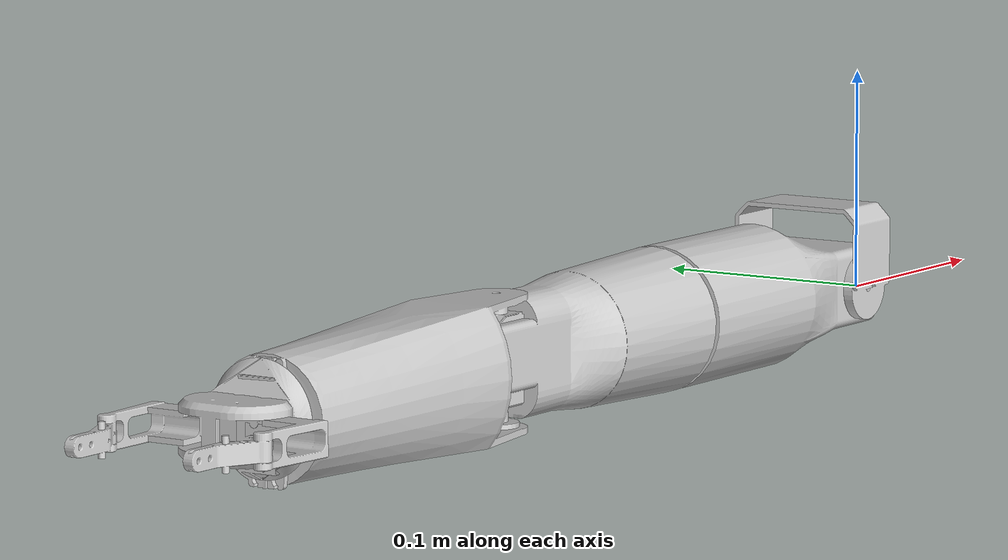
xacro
<?xml version="1.0"?>
  <robot xmlns:xacro="http://ros.org/wiki/xacro" name="anya_left">
  <xacro:include filename="$(find anya_final)/urdf/anya_gripper.urdf.xacro"/>

  <xacro:property name="scale" value="0.001" />
  <xacro:property name="laj_1_l" value="-3.14159" />
  <xacro:property name="laj_1_u" value="3.14159"  />

  <xacro:property name="laj_2_l" value="-3.14159" />
  <xacro:property name="laj_2_u" value="3.14159"  />

  <xacro:property name="laj_3_l" value="-3.14159" />
  <xacro:property name="laj_3_u" value="3.14159"  />

  <xacro:property name="laj_4_l" value="-3.14159" />
  <xacro:property name="laj_4_u" value="3.14159"  />

     <link name="lal_1">
       <visual>
          <geometry>
            <mesh filename="package://anya_final/meshes/c5.dae" scale="${scale} ${scale} ${scale}"/>
          </geometry>
          <origin xyz="0.0 0.0 0.0" rpy="0 0 0"/>
       </visual>
       <collision>
         <geometry>
            <mesh filename="package://anya_final/meshes/c5.stl" scale="${scale} ${scale} ${scale}"/>
         </geometry>
       </collision>
       <inertial>
         <mass value="0.016"/>
         <inertia ixx="100.0" ixy="0.0" ixz="0.0" iyy="100.0" iyz="0.0" izz="100.0"/>
       </inertial>
     </link>
     <link name="lal_2">
       <visual>
        <geometry>
          <mesh filename="package://anya_final/meshes/c4.dae" scale="${scale} ${scale} ${scale}"/>
        </geometry>
        <origin xyz="0.0 -0.005 0.0" rpy="0.0 0.0 0.0"/>
       </visual>
       <collision>
         <geometry>
            <mesh filename="package://anya_final/meshes/c4.stl" scale="${scale} ${scale} ${scale}"/>
         </geometry>
       </collision>
       <inertial>
         <mass value="0.237"/>
         <inertia ixx="100.0" ixy="0.0" ixz="0.0" iyy="100.0" iyz="0.0" izz="100.0"/>
       </inertial>
     </link>
     <link name="lal_3">
       <visual>
        <geometry>
          <mesh filename="package://anya_final/meshes/c3.dae" scale="${scale} ${scale} ${scale}"/>
        </geometry>
        <origin xyz="-0 0 0.0" rpy="0 0 0.0"/>
       </visual>
       <collision>
         <geometry>
            <mesh filename="package://anya_final/meshes/c3.stl" scale="${scale} ${scale} ${scale}"/>
         </geometry>
       </collision>
       <inertial>
         <mass value="0.131"/>
         <inertia ixx="100.0" ixy="0.0" ixz="0.0" iyy="100.0" iyz="0.0" izz="100.0"/>
       </inertial>
     </link>
     <link name="lal_4">
       <visual>
        <geometry>
          <mesh filename="package://anya_final/meshes/c2.dae" scale="${scale} ${scale} ${scale}"/>
        </geometry>
        <origin xyz="0 0 0.0" rpy="0 0 0.0"/>
       </visual>
       <collision>
         <geometry>
            <mesh filename="package://anya_final/meshes/c2.stl" scale="${scale} ${scale} ${scale}"/>
         </geometry>
       </collision>
       <inertial>
         <mass value="0.146"/>
         <inertia ixx="100.0" ixy="0.0" ixz="0.0" iyy="100.0" iyz="0.0" izz="100.0"/>
       </inertial>
     </link>

     <joint name="laj_1" type="revolute">
       <parent link="lal_1"/>
       <child link="lal_2"/>
       <axis xyz="0 1 0"/>
       <limit lower="${laj_1_l}" upper="${laj_1_u}" velocity="1.0" effort="60.0"/>

       <origin xyz="0 -0.0 0" rpy="0 0 0"/>
     </joint>

     <joint name="laj_2" type="revolute">
       <parent link="lal_2"/>
       <child link="lal_3"/>
       <axis xyz="1 0 0"/>
       <limit lower="${laj_2_l}" upper="${laj_2_u}" velocity="1.0" effort="60.0"/>

       <origin xyz="-0.130 0.025 0.0" rpy="0 0 0"/>
     </joint>

     <joint name="laj_3" type="revolute">
       <parent link="lal_3"/>
       <child link="lal_4"/>
       <axis xyz="0 0 1"/>
       <limit lower="${laj_3_l}" upper="${laj_3_u}" velocity="1.0" effort="60.0"/>

       <origin xyz="-0.13950 -0.004 -0.02250" rpy="0 0 0"/>
      </joint>

     <joint name="gripper_joint" type="revolute">
       <parent link="lal_4"/>
       <child link="gripper_link"/>
       <axis xyz="0 1 0"/>
       <limit lower="${laj_4_l}" upper="${laj_4_u}" velocity="1.0" effort="60.0"/>

       <origin xyz="-0.17 0.0 0.02" rpy="0 0 -1.59"/>
     </joint>

  </robot>

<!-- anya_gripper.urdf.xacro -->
<robot xmlns:xacro="http://ros.org/wiki/xacro" name="anya_gripper">
    <link name="gripper_link">
        <visual>
            <geometry>
                <mesh filename="package://anya_final/meshes/gripper_3.dae" scale="0.001 0.001 0.001"/>
            </geometry>
            <origin xyz="0.0 0.0 0.0" rpy="0 0 0"/>
        </visual>
        <collision>
         <geometry>
            <mesh filename="package://anya_final/meshes/gripper_3.dae" scale="0.001 0.001 0.001"/>
         </geometry>
         <origin xyz="0.0 0.0 -0.0" rpy="0 0 0"/>
       </collision>
       <inertial>
         <mass value="0.131"/>
         <inertia ixx="100.0" ixy="0.0" ixz="0.0" iyy="100.0" iyz="0.0" izz="100.0"/>
       </inertial>
    </link>

    <link name="finger_1">
        <visual>
            <geometry>
                <mesh filename="package://anya_final/meshes/finger_1.dae" scale="0.001 0.001 0.001"/>
            </geometry>
            <origin xyz="-0.02 -0.017214 0.007" rpy="0 0 0"/>
        </visual>
        <collision>
         <geometry>
            <mesh filename="package://anya_final/meshes/finger_1.dae" scale="0.001 0.001 0.001"/>
         </geometry>
         <origin xyz="0.0 0.0 0.0" rpy="0 0 0"/>
       </collision>
       <inertial>
         <mass value="0.131"/>
         <inertia ixx="100.0" ixy="0.0" ixz="0.0" iyy="100.0" iyz="0.0" izz="100.0"/>
       </inertial>
    </link>

    <joint name="finger_joint_1" type="prismatic">
        <parent link="gripper_link"/>
        <child link="finger_1"/>
        <axis xyz="1 0 0"/>
        <limit lower="-0.0" upper="0.02" velocity="0.5" effort="1000.0"/>
        <origin xyz="0 -0.0 0.0" rpy="0 0 0"/>
    </joint>

    <link name="finger_2">
        <visual>
            <geometry>
                <mesh filename="package://anya_final/meshes/finger_1.dae" scale="0.001 0.001 0.001"/>
            </geometry>
            <origin xyz="-0.02 -0.017214 0.007" rpy="0 0 0"/>
        </visual>
        <collision>
         <geometry>
            <mesh filename="package://anya_final/meshes/finger_1.dae" scale="0.001 0.001 0.001"/>
         </geometry>
         <origin xyz="-0.02 -0.017214 0.007" rpy="0 0 0"/>
       </collision>
       <inertial>
         <mass value="0.131"/>
         <inertia ixx="100.0" ixy="0.0" ixz="0.0" iyy="100.0" iyz="0.0" izz="100.0"/>
       </inertial>
    </link>

    <joint name="finger_joint_2" type="prismatic">
        <parent link="gripper_link"/>
        <child link="finger_2"/>
        <axis xyz="1 0 0"/>
        <limit lower="-0.0" upper="0.02" velocity="0.5" effort="1000.0"/>
        <origin xyz="0 0.0 0.0" rpy="0 3.14 0"/>
    </joint>

</robot>
